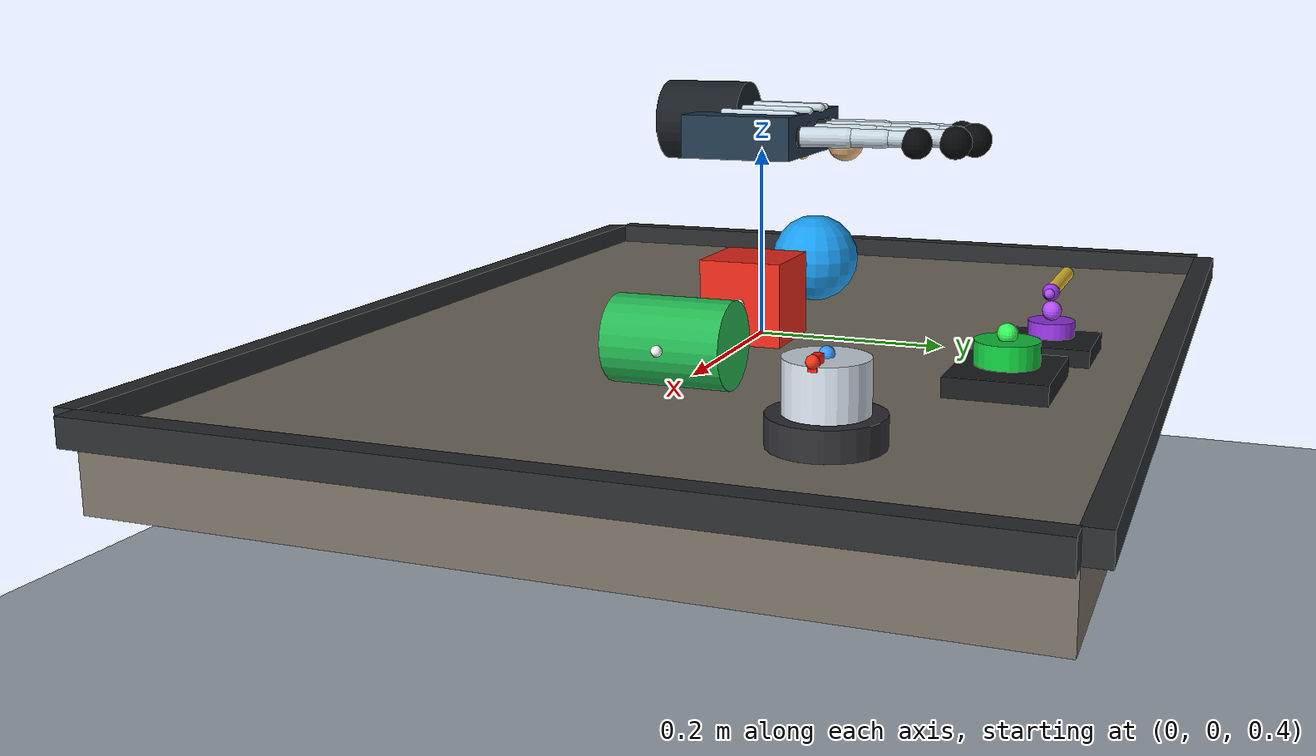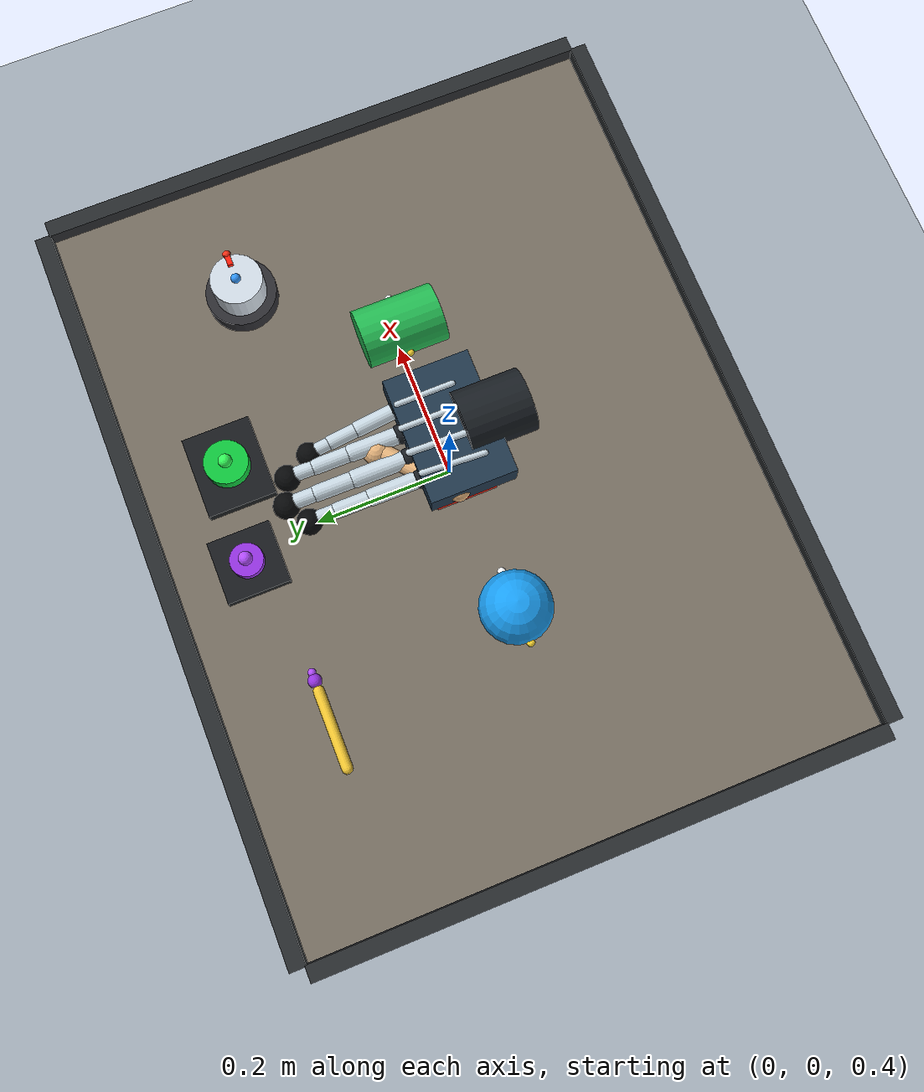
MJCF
<mujoco model="dexhand_lab">
  <compiler angle="degree" autolimits="true"/>
  <option timestep="0.01" integrator="RK4" gravity="0 0 -9.81"/>

  <visual>
    <global offwidth="1280" offheight="720"/>
    <quality shadowsize="2048"/>
  </visual>

  <default>
    <geom friction="1.0 0.04 0.004" solimp="0.9 0.95 0.001" solref="0.02 1"/>
    <joint damping="5" armature="0.01"/>
  </default>

  <asset>
    <texture name="grid_tex" type="2d" builtin="checker" rgb1="0.84 0.86 0.88" rgb2="0.68 0.72 0.76" width="256" height="256"/>
    <material name="floor_mat" texture="grid_tex" texrepeat="5 5" rgba="0.84 0.86 0.88 1"/>
    <material name="table_mat" rgba="0.46 0.43 0.38 1"/>
    <material name="palm_mat" rgba="0.13 0.22 0.30 1"/>
    <material name="finger_mat" rgba="0.78 0.84 0.88 1"/>
    <material name="thumb_mat" rgba="0.92 0.72 0.50 1"/>
    <material name="finger_joint_mat" rgba="0.10 0.12 0.14 1"/>
    <material name="pad_mat" rgba="0.03 0.035 0.04 1"/>
    <material name="sphere_mat" rgba="0.10 0.62 0.95 1"/>
    <material name="cube_mat" rgba="0.92 0.16 0.10 1"/>
    <material name="cylinder_mat" rgba="0.14 0.72 0.32 1"/>
    <material name="stylus_mat" rgba="0.95 0.78 0.20 1"/>
    <material name="button_mat" rgba="0.06 0.78 0.24 1"/>
    <material name="checkpoint_mat" rgba="0.58 0.20 0.88 1"/>
    <material name="cap_base_mat" rgba="0.18 0.18 0.20 1"/>
    <material name="cap_knob_mat" rgba="0.82 0.86 0.90 1"/>
    <material name="cap_marker_mat" rgba="1.00 0.12 0.05 1"/>
  </asset>

  <worldbody>
    <geom name="floor" type="plane" size="2.0 2.0 0.05" material="floor_mat"/>
    <light name="key_light" pos="0.0 -1.2 1.8" dir="0.0 0.4 -1" diffuse="0.95 0.95 0.92"/>
    <light name="fill_light" pos="-1.0 1.1 1.5" dir="0.5 -0.4 -1" diffuse="0.35 0.40 0.48"/>

    <camera name="front_camera" pos="0.36 -0.84 0.70" xyaxes="0.94 0.34 0 -0.16 0.45 0.88" fovy="36"/>
    <camera name="grasp_camera" pos="0.30 -0.55 0.62" xyaxes="0.94 0.34 0 -0.18 0.46 0.87" fovy="28"/>
    <camera name="top_camera" pos="0.0 0.0 1.32" xyaxes="1 0 0 0 1 0" fovy="42"/>

    <body name="table" pos="0 0 0.36">
      <geom name="table_top" type="box" size="0.55 0.42 0.035" material="table_mat"/>
      <geom name="table_edge_front" type="box" pos="0 -0.43 0.045" size="0.55 0.012 0.014" rgba="0.16 0.17 0.18 1"/>
      <geom name="table_edge_back" type="box" pos="0 0.43 0.045" size="0.55 0.012 0.014" rgba="0.16 0.17 0.18 1"/>
      <geom name="table_edge_left" type="box" pos="-0.56 0 0.045" size="0.012 0.42 0.014" rgba="0.16 0.17 0.18 1"/>
      <geom name="table_edge_right" type="box" pos="0.56 0 0.045" size="0.012 0.42 0.014" rgba="0.16 0.17 0.18 1"/>
    </body>

    <body name="sphere_object" pos="-0.22 -0.01 0.447">
      <freejoint name="sphere_object_joint"/>
      <geom name="sphere_object_geom" type="sphere" size="0.052" material="sphere_mat" mass="0.060"/>
      <geom name="sphere_contact_thumb_marker" type="sphere" pos="-0.052 0 0" size="0.006" rgba="1 0.86 0.20 1" contype="0" conaffinity="0"/>
      <geom name="sphere_contact_finger_marker" type="sphere" pos="0.052 0 0" size="0.006" rgba="1 1 1 1" contype="0" conaffinity="0"/>
      <geom name="sphere_contact_lower_marker" type="sphere" pos="0 -0.030 -0.035" size="0.005" rgba="0.05 0.05 0.05 1" contype="0" conaffinity="0"/>
    </body>

    <body name="cube_object" pos="0.00 -0.01 0.440">
      <freejoint name="cube_object_joint"/>
      <geom name="cube_object_geom" type="box" size="0.045 0.045 0.045" material="cube_mat" mass="0.065"/>
      <geom name="cube_thumb_face_marker" type="sphere" pos="-0.046 0 0" size="0.0055" rgba="1 0.86 0.20 1" contype="0" conaffinity="0"/>
      <geom name="cube_opposing_face_marker" type="sphere" pos="0.046 0 0" size="0.0055" rgba="1 1 1 1" contype="0" conaffinity="0"/>
      <geom name="cube_lower_support_marker" type="sphere" pos="0 -0.026 -0.046" size="0.005" rgba="0.05 0.05 0.05 1" contype="0" conaffinity="0"/>
    </body>

    <body name="cylinder_object" pos="0.22 -0.01 0.438">
      <freejoint name="cylinder_object_joint"/>
      <geom name="cylinder_object_geom" type="cylinder" euler="90 0 0" size="0.043 0.060" material="cylinder_mat" mass="0.065"/>
      <geom name="cylinder_thumb_side_marker" type="sphere" pos="-0.044 0 0" size="0.0055" rgba="1 0.86 0.20 1" contype="0" conaffinity="0"/>
      <geom name="cylinder_opposing_side_marker" type="sphere" pos="0.044 0 0" size="0.0055" rgba="1 1 1 1" contype="0" conaffinity="0"/>
      <geom name="cylinder_lower_support_marker" type="sphere" pos="0 0 -0.044" size="0.005" rgba="0.05 0.05 0.05 1" contype="0" conaffinity="0"/>
    </body>

    <body name="stylus_tool" pos="-0.28 0.28 0.425">
      <freejoint name="stylus_tool_joint"/>
      <geom name="stylus_body_geom" type="capsule" fromto="-0.055 0 0 0.055 0 0" size="0.008" material="stylus_mat" mass="0.018"/>
      <geom name="stylus_tip_geom" type="sphere" pos="0.070 0 0" size="0.010" material="checkpoint_mat"/>
      <site name="stylus_tip_site" pos="0.082 0 0" size="0.006" rgba="0.7 0.3 1 1"/>
    </body>

    <body name="button_station" pos="0.12 0.29 0.405">
      <geom name="button_base_geom" type="box" size="0.060 0.050 0.010" rgba="0.10 0.11 0.12 1"/>
      <body name="button_plunger" pos="0 0 0.024">
        <joint name="button_joint" type="slide" axis="0 0 1" range="-0.018 0.002" damping="6"/>
        <geom name="button_geom" type="cylinder" size="0.032 0.012" material="button_mat"/>
        <site name="button_site" pos="0 0 0.018" size="0.010" rgba="0.2 1.0 0.35 1"/>
      </body>
    </body>

    <body name="checkpoint_target" pos="-0.02 0.31 0.405">
      <geom name="checkpoint_base_geom" type="box" size="0.046 0.046 0.009" rgba="0.10 0.11 0.12 1"/>
      <geom name="checkpoint_geom" type="cylinder" pos="0 0 0.020" size="0.024 0.008" material="checkpoint_mat"/>
      <site name="checkpoint_site" pos="0 0 0.038" size="0.010" rgba="0.7 0.3 1 1"/>
    </body>

    <body name="cap_knob_station" pos="0.36 0.185 0.405">
      <geom name="cap_knob_base_geom" type="cylinder" size="0.052 0.018" material="cap_base_mat"/>
      <body name="cap_knob" pos="0 0 0.040">
        <joint name="cap_knob_joint" type="hinge" axis="0 0 1" range="-6.2832 6.2832" damping="2.5"/>
        <geom name="cap_knob_geom" type="cylinder" size="0.038 0.026" material="cap_knob_mat" mass="0.030"/>
        <geom name="cap_marker_geom" type="box" pos="0.030 0 0.028" size="0.010 0.004 0.006" material="cap_marker_mat"/>
        <site name="cap_marker_site" pos="0.038 0 0.030" size="0.006" rgba="1 0.2 0.1 1"/>
        <site name="cap_center_site" pos="0 0 0.028" size="0.007" rgba="0.2 0.6 1 1"/>
      </body>
    </body>

    <body name="palm_body" pos="0 0 0.620">
      <joint name="hand_x" type="slide" axis="1 0 0" range="-0.40 0.40" damping="8"/>
      <joint name="hand_y" type="slide" axis="0 1 0" range="-0.22 0.34" damping="8"/>
      <joint name="hand_z" type="slide" axis="0 0 1" range="-0.13 0.06" damping="8"/>
      <joint name="wrist_yaw" type="hinge" axis="0 0 1" range="-35 35" damping="5"/>
      <joint name="wrist_pitch" type="hinge" axis="1 0 0" range="-25 25" damping="5"/>
      <joint name="wrist_roll" type="hinge" axis="0 1 0" range="-25 25" damping="5"/>
      <geom name="wrist_mount_geom" type="cylinder" pos="0 -0.060 0.010" euler="90 0 0" size="0.042 0.045" material="finger_joint_mat" contype="0" conaffinity="0"/>
      <geom name="palm_geom" type="box" pos="0 0 0" size="0.085 0.058 0.022" material="palm_mat" contype="0" conaffinity="0"/>
      <geom name="index_metacarpal_rail" type="capsule" fromto="-0.050 -0.028 0.025 -0.045 0.055 0.024" size="0.004" material="finger_mat" contype="0" conaffinity="0"/>
      <geom name="middle_metacarpal_rail" type="capsule" fromto="-0.018 -0.032 0.026 -0.015 0.060 0.025" size="0.0045" material="finger_mat" contype="0" conaffinity="0"/>
      <geom name="ring_metacarpal_rail" type="capsule" fromto="0.018 -0.030 0.025 0.018 0.058 0.024" size="0.004" material="finger_mat" contype="0" conaffinity="0"/>
      <geom name="little_metacarpal_rail" type="capsule" fromto="0.050 -0.024 0.023 0.050 0.052 0.022" size="0.0038" material="finger_mat" contype="0" conaffinity="0"/>
      <site name="palm_center_site" pos="0 0.045 -0.020" size="0.008" rgba="1 0.9 0.2 1"/>

      <body name="thumb_metacarpal" pos="-0.075 0.018 -0.004" euler="0 0 -48">
        <joint name="thumb_cmc_opposition" type="hinge" axis="-1 0 0" range="0 85" damping="4"/>
        <joint name="thumb_cmc_abduction" type="hinge" axis="0 0 1" range="-10 45" damping="4"/>
        <geom name="thumb_cmc_joint_geom" type="sphere" size="0.016" material="thumb_mat" contype="0" conaffinity="0"/>
        <geom name="thumb_proximal_geom" type="capsule" fromto="0 0 0 0 0.045 0" size="0.014" material="thumb_mat" contype="0" conaffinity="0"/>
        <body name="thumb_proximal" pos="0 0.045 0">
          <joint name="thumb_mcp_flexion" type="hinge" axis="-1 0 0" range="0 85" damping="4"/>
          <geom name="thumb_mcp_joint_geom" type="sphere" size="0.014" material="thumb_mat" contype="0" conaffinity="0"/>
          <geom name="thumb_middle_geom" type="capsule" fromto="0 0 0 0 0.039 0" size="0.013" material="thumb_mat" contype="0" conaffinity="0"/>
          <body name="thumb_distal" pos="0 0.039 0">
            <joint name="thumb_ip_flexion" type="hinge" axis="-1 0 0" range="0 80" damping="4"/>
            <geom name="thumb_ip_joint_geom" type="sphere" size="0.012" material="thumb_mat" contype="0" conaffinity="0"/>
            <geom name="thumb_distal_geom" type="capsule" fromto="0 0 0 0 0.028 0" size="0.012" material="thumb_mat" contype="0" conaffinity="0"/>
            <geom name="thumb_tip_pad" type="sphere" pos="0 0.032 -0.004" size="0.019" material="thumb_mat" contype="1" conaffinity="1"/>
            <site name="thumb_tip_site" pos="0 0.034 -0.004" size="0.006" rgba="1 1 1 1"/>
          </body>
        </body>
      </body>

      <body name="index_metacarpal" pos="-0.045 0.058 0.000">
        <joint name="index_mcp_abduction" type="hinge" axis="0 0 1" range="-16 16" damping="4"/>
        <joint name="index_mcp_flexion" type="hinge" axis="-1 0 0" range="0 95" damping="4"/>
        <geom name="index_mcp_joint_geom" type="sphere" size="0.013" material="finger_joint_mat" contype="0" conaffinity="0"/>
        <geom name="index_proximal_geom" type="capsule" fromto="0 0 0 0 0.065 0" size="0.0115" material="finger_mat" contype="0" conaffinity="0"/>
        <body name="index_middle" pos="0 0.065 0">
          <joint name="index_pip_flexion" type="hinge" axis="-1 0 0" range="0 100" damping="4"/>
          <geom name="index_pip_joint_geom" type="sphere" size="0.011" material="finger_joint_mat" contype="0" conaffinity="0"/>
          <geom name="index_middle_geom" type="capsule" fromto="0 0 0 0 0.046 0" size="0.0105" material="finger_mat" contype="0" conaffinity="0"/>
          <body name="index_distal" pos="0 0.046 0">
            <joint name="index_dip_flexion" type="hinge" axis="-1 0 0" range="0 85" damping="4"/>
            <geom name="index_dip_joint_geom" type="sphere" size="0.0095" material="finger_joint_mat" contype="0" conaffinity="0"/>
            <geom name="index_distal_geom" type="capsule" fromto="0 0 0 0 0.033 0" size="0.0095" material="finger_mat" contype="0" conaffinity="0"/>
            <geom name="index_tip_pad" type="sphere" pos="0 0.037 -0.004" size="0.017" material="pad_mat" contype="1" conaffinity="1"/>
            <site name="index_tip_site" pos="0 0.039 -0.004" size="0.006" rgba="1 1 1 1"/>
          </body>
        </body>
      </body>

      <body name="middle_metacarpal" pos="-0.015 0.062 0.000">
        <joint name="middle_mcp_abduction" type="hinge" axis="0 0 1" range="-12 12" damping="4"/>
        <joint name="middle_mcp_flexion" type="hinge" axis="-1 0 0" range="0 100" damping="4"/>
        <geom name="middle_mcp_joint_geom" type="sphere" size="0.0135" material="finger_joint_mat" contype="0" conaffinity="0"/>
        <geom name="middle_proximal_geom" type="capsule" fromto="0 0 0 0 0.072 0" size="0.012" material="finger_mat" contype="0" conaffinity="0"/>
        <body name="middle_middle" pos="0 0.072 0">
          <joint name="middle_pip_flexion" type="hinge" axis="-1 0 0" range="0 105" damping="4"/>
          <geom name="middle_pip_joint_geom" type="sphere" size="0.0115" material="finger_joint_mat" contype="0" conaffinity="0"/>
          <geom name="middle_middle_geom" type="capsule" fromto="0 0 0 0 0.051 0" size="0.011" material="finger_mat" contype="0" conaffinity="0"/>
          <body name="middle_distal" pos="0 0.051 0">
            <joint name="middle_dip_flexion" type="hinge" axis="-1 0 0" range="0 90" damping="4"/>
            <geom name="middle_dip_joint_geom" type="sphere" size="0.010" material="finger_joint_mat" contype="0" conaffinity="0"/>
            <geom name="middle_distal_geom" type="capsule" fromto="0 0 0 0 0.037 0" size="0.010" material="finger_mat" contype="0" conaffinity="0"/>
            <geom name="middle_tip_pad" type="sphere" pos="0 0.041 -0.004" size="0.0175" material="pad_mat" contype="1" conaffinity="1"/>
            <site name="middle_tip_site" pos="0 0.043 -0.004" size="0.006" rgba="1 1 1 1"/>
          </body>
        </body>
      </body>

      <body name="ring_metacarpal" pos="0.018 0.060 0.000">
        <joint name="ring_mcp_abduction" type="hinge" axis="0 0 1" range="-12 14" damping="4"/>
        <joint name="ring_mcp_flexion" type="hinge" axis="-1 0 0" range="0 98" damping="4"/>
        <geom name="ring_mcp_joint_geom" type="sphere" size="0.013" material="finger_joint_mat" contype="0" conaffinity="0"/>
        <geom name="ring_proximal_geom" type="capsule" fromto="0 0 0 0 0.067 0" size="0.0115" material="finger_mat" contype="0" conaffinity="0"/>
        <body name="ring_middle" pos="0 0.067 0">
          <joint name="ring_pip_flexion" type="hinge" axis="-1 0 0" range="0 102" damping="4"/>
          <geom name="ring_pip_joint_geom" type="sphere" size="0.011" material="finger_joint_mat" contype="0" conaffinity="0"/>
          <geom name="ring_middle_geom" type="capsule" fromto="0 0 0 0 0.048 0" size="0.0105" material="finger_mat" contype="0" conaffinity="0"/>
          <body name="ring_distal" pos="0 0.048 0">
            <joint name="ring_dip_flexion" type="hinge" axis="-1 0 0" range="0 88" damping="4"/>
            <geom name="ring_dip_joint_geom" type="sphere" size="0.0095" material="finger_joint_mat" contype="0" conaffinity="0"/>
            <geom name="ring_distal_geom" type="capsule" fromto="0 0 0 0 0.034 0" size="0.0095" material="finger_mat" contype="0" conaffinity="0"/>
            <geom name="ring_tip_pad" type="sphere" pos="0 0.038 -0.004" size="0.017" material="pad_mat" contype="1" conaffinity="1"/>
            <site name="ring_tip_site" pos="0 0.040 -0.004" size="0.006" rgba="1 1 1 1"/>
          </body>
        </body>
      </body>

      <body name="little_metacarpal" pos="0.050 0.054 0.000" euler="0 0 6">
        <joint name="little_mcp_abduction" type="hinge" axis="0 0 1" range="-14 18" damping="4"/>
        <joint name="little_mcp_flexion" type="hinge" axis="-1 0 0" range="0 96" damping="4"/>
        <geom name="little_mcp_joint_geom" type="sphere" size="0.012" material="finger_joint_mat" contype="0" conaffinity="0"/>
        <geom name="little_proximal_geom" type="capsule" fromto="0 0 0 0 0.054 0" size="0.0105" material="finger_mat" contype="0" conaffinity="0"/>
        <body name="little_middle" pos="0 0.054 0">
          <joint name="little_pip_flexion" type="hinge" axis="-1 0 0" range="0 100" damping="4"/>
          <geom name="little_pip_joint_geom" type="sphere" size="0.010" material="finger_joint_mat" contype="0" conaffinity="0"/>
          <geom name="little_middle_geom" type="capsule" fromto="0 0 0 0 0.038 0" size="0.0095" material="finger_mat" contype="0" conaffinity="0"/>
          <body name="little_distal" pos="0 0.038 0">
            <joint name="little_dip_flexion" type="hinge" axis="-1 0 0" range="0 85" damping="4"/>
            <geom name="little_dip_joint_geom" type="sphere" size="0.0085" material="finger_joint_mat" contype="0" conaffinity="0"/>
            <geom name="little_distal_geom" type="capsule" fromto="0 0 0 0 0.028 0" size="0.0085" material="finger_mat" contype="0" conaffinity="0"/>
            <geom name="little_tip_pad" type="sphere" pos="0 0.032 -0.004" size="0.016" material="pad_mat" contype="1" conaffinity="1"/>
            <site name="little_tip_site" pos="0 0.034 -0.004" size="0.006" rgba="1 1 1 1"/>
          </body>
        </body>
      </body>
    </body>
  </worldbody>

  <sensor>
    <touch name="touch_thumb_tip" site="thumb_tip_site"/>
    <touch name="touch_index_tip" site="index_tip_site"/>
    <touch name="touch_middle_tip" site="middle_tip_site"/>
    <touch name="touch_ring_tip" site="ring_tip_site"/>
    <touch name="touch_little_tip" site="little_tip_site"/>
  </sensor>

  <actuator>
    <position name="act_hand_x" joint="hand_x" kp="160" ctrlrange="-0.40 0.40"/>
    <position name="act_hand_y" joint="hand_y" kp="160" ctrlrange="-0.22 0.34"/>
    <position name="act_hand_z" joint="hand_z" kp="160" ctrlrange="-0.13 0.06"/>
    <position name="act_wrist_yaw" joint="wrist_yaw" kp="80" ctrlrange="-0.6109 0.6109"/>
    <position name="act_wrist_pitch" joint="wrist_pitch" kp="80" ctrlrange="-0.4363 0.4363"/>
    <position name="act_wrist_roll" joint="wrist_roll" kp="80" ctrlrange="-0.4363 0.4363"/>
    <position name="act_thumb_cmc_opposition" joint="thumb_cmc_opposition" kp="65" ctrlrange="0 1.4835"/>
    <position name="act_thumb_cmc_abduction" joint="thumb_cmc_abduction" kp="65" ctrlrange="-0.1745 0.7854"/>
    <position name="act_thumb_mcp_flexion" joint="thumb_mcp_flexion" kp="65" ctrlrange="0 1.4835"/>
    <position name="act_thumb_ip_flexion" joint="thumb_ip_flexion" kp="65" ctrlrange="0 1.3963"/>
    <position name="act_index_mcp_abduction" joint="index_mcp_abduction" kp="65" ctrlrange="-0.2793 0.2793"/>
    <position name="act_index_mcp_flexion" joint="index_mcp_flexion" kp="65" ctrlrange="0 1.6581"/>
    <position name="act_index_pip_flexion" joint="index_pip_flexion" kp="65" ctrlrange="0 1.7453"/>
    <position name="act_index_dip_flexion" joint="index_dip_flexion" kp="65" ctrlrange="0 1.4835"/>
    <position name="act_middle_mcp_abduction" joint="middle_mcp_abduction" kp="65" ctrlrange="-0.2094 0.2094"/>
    <position name="act_middle_mcp_flexion" joint="middle_mcp_flexion" kp="65" ctrlrange="0 1.7453"/>
    <position name="act_middle_pip_flexion" joint="middle_pip_flexion" kp="65" ctrlrange="0 1.8326"/>
    <position name="act_middle_dip_flexion" joint="middle_dip_flexion" kp="65" ctrlrange="0 1.5708"/>
    <position name="act_ring_mcp_abduction" joint="ring_mcp_abduction" kp="65" ctrlrange="-0.2094 0.2443"/>
    <position name="act_ring_mcp_flexion" joint="ring_mcp_flexion" kp="65" ctrlrange="0 1.7104"/>
    <position name="act_ring_pip_flexion" joint="ring_pip_flexion" kp="65" ctrlrange="0 1.7802"/>
    <position name="act_ring_dip_flexion" joint="ring_dip_flexion" kp="65" ctrlrange="0 1.5359"/>
    <position name="act_little_mcp_abduction" joint="little_mcp_abduction" kp="65" ctrlrange="-0.2443 0.3142"/>
    <position name="act_little_mcp_flexion" joint="little_mcp_flexion" kp="65" ctrlrange="0 1.6755"/>
    <position name="act_little_pip_flexion" joint="little_pip_flexion" kp="65" ctrlrange="0 1.7453"/>
    <position name="act_little_dip_flexion" joint="little_dip_flexion" kp="65" ctrlrange="0 1.4835"/>
  </actuator>
</mujoco>
